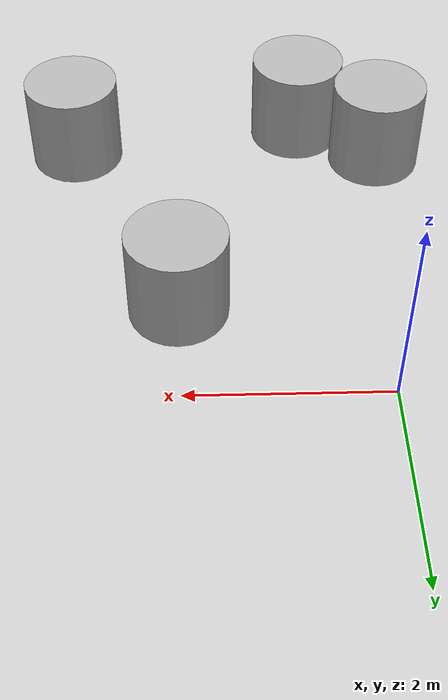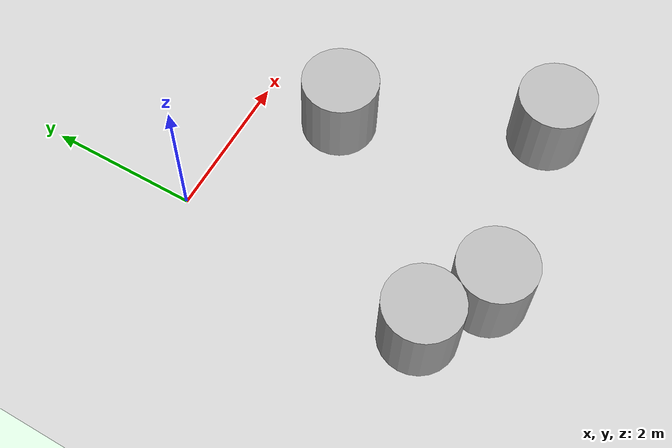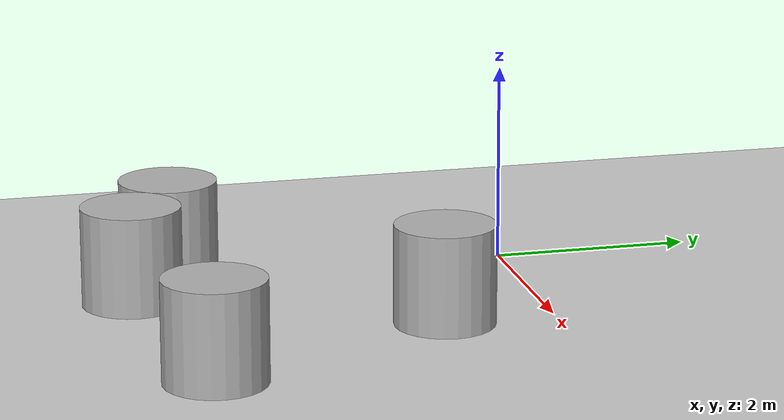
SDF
<?xml version='1.0' encoding='utf-8'?>
<sdf version='1.10'>
  <world name='default'>
    <physics type='ode'>
      <max_step_size>0.0040000000000000001</max_step_size>
      <real_time_factor>1</real_time_factor>
      <real_time_update_rate>250</real_time_update_rate>
    </physics>
    <plugin name='gz::sim::systems::Physics' filename='gz-sim-physics-system'/>
    <plugin name='gz::sim::systems::UserCommands' filename='gz-sim-user-commands-system'/>
    <plugin name='gz::sim::systems::SceneBroadcaster' filename='gz-sim-scene-broadcaster-system'/>
    <plugin name='gz::sim::systems::Contact' filename='gz-sim-contact-system'/>
    <plugin name='gz::sim::systems::Imu' filename='gz-sim-imu-system'/>
    <plugin name='gz::sim::systems::AirPressure' filename='gz-sim-air-pressure-system'/>
    <plugin name='gz::sim::systems::Sensors' filename='gz-sim-sensors-system'>
      <render_engine>ogre2</render_engine>
    </plugin>
    <gui fullscreen='false'>
      <plugin name='3D View' filename='GzScene3D'>
        <gz-gui>
          <title>3D View</title>
          <property type='bool' key='showTitleBar'>0</property>
          <property type='string' key='state'>docked</property>
        </gz-gui>
        <engine>ogre2</engine>
        <scene>scene</scene>
        <ambient_light>0.5984631152222222 0.5984631152222222 0.5984631152222222</ambient_light>
        <background_color>0.8984631152222222 0.8984631152222222 0.8984631152222222</background_color>
        <camera_pose>-6 0 6 0 0.5 0</camera_pose>
      </plugin>
      <plugin name='World control' filename='WorldControl'>
        <gz-gui>
          <title>World control</title>
          <property type='bool' key='showTitleBar'>0</property>
          <property type='bool' key='resizable'>0</property>
          <property type='double' key='height'>72</property>
          <property type='double' key='width'>121</property>
          <property type='double' key='z'>1</property>
          <property type='string' key='state'>floating</property>
          <anchors target='3D View'>
            <line own='left' target='left'/>
            <line own='bottom' target='bottom'/>
          </anchors>
        </gz-gui>
        <play_pause>1</play_pause>
        <step>1</step>
        <start_paused>1</start_paused>
      </plugin>
      <plugin name='World stats' filename='WorldStats'>
        <gz-gui>
          <title>World stats</title>
          <property type='bool' key='showTitleBar'>0</property>
          <property type='bool' key='resizable'>0</property>
          <property type='double' key='height'>110</property>
          <property type='double' key='width'>290</property>
          <property type='double' key='z'>1</property>
          <property type='string' key='state'>floating</property>
          <anchors target='3D View'>
            <line own='right' target='right'/>
            <line own='bottom' target='bottom'/>
          </anchors>
        </gz-gui>
        <sim_time>1</sim_time>
        <real_time>1</real_time>
        <real_time_factor>1</real_time_factor>
        <iterations>1</iterations>
      </plugin>
      <plugin name='Entity tree' filename='EntityTree'/>
    </gui>
    <gravity>0 0 -9.8</gravity>
    <magnetic_field>6e-06 2.3e-05 -4.2e-05</magnetic_field>
    <atmosphere type='adiabatic'/>
    <scene>
      <grid>false</grid>
      <ambient>0.4 0.4 0.4 1</ambient>
      <background>0.7 0.7 0.7 1</background>
      <shadows>true</shadows>
    </scene>
    <model name='ground_plane'>
      <static>true</static>
      <link name='link'>
        <collision name='collision'>
          <geometry>
            <plane>
              <normal>0 0 1</normal>
              <size>1 1</size>
            </plane>
          </geometry>
          <surface>
            <friction>
              <ode/>
            </friction>
            <bounce/>
            <contact/>
          </surface>
        </collision>
        <visual name='visual'>
          <geometry>
            <plane>
              <normal>0 0 1</normal>
              <size>100 100</size>
            </plane>
          </geometry>
          <material>
            <ambient>0.8 0.8 0.8 1</ambient>
            <diffuse>0.8 0.8 0.8 1</diffuse>
            <specular>0.8 0.8 0.8 1</specular>
          </material>
        </visual>
        <pose>0 0 0 0 -0 0</pose>
        <inertial>
          <pose>0 0 0 0 -0 0</pose>
          <mass>1</mass>
          <inertia>
            <ixx>1</ixx>
            <ixy>0</ixy>
            <ixz>0</ixz>
            <iyy>1</iyy>
            <iyz>0</iyz>
            <izz>1</izz>
          </inertia>
        </inertial>
        <enable_wind>false</enable_wind>
      </link>
      <pose>0 0 0 0 -0 0</pose>
      <self_collide>false</self_collide>
    </model>
        <model name='cylinder'>
      <pose>-0.16528587826831759 -3.4235164938683345 0.50000000104354192 -5.5099679327457442e-07 -8.6371922916007458e-07 0.00060401790781018216</pose>
      <link name='cylinder_link'>
        <inertial>
          <inertia>
            <ixx>0.14580000000000001</ixx>
            <ixy>0</ixy>
            <ixz>0</ixz>
            <iyy>0.14580000000000001</iyy>
            <iyz>0</iyz>
            <izz>0.125</izz>
          </inertia>
          <mass>1</mass>
          <pose>0 0 0 0 0 0</pose>
        </inertial>
        <collision name='cylinder_collision'>
          <geometry>
            <cylinder>
              <radius>0.5</radius>
              <length>1</length>
            </cylinder>
          </geometry>
          <surface>
            <friction>
              <ode/>
            </friction>
            <bounce/>
            <contact/>
          </surface>
        </collision>
        <visual name='cylinder_visual'>
          <geometry>
            <cylinder>
              <radius>0.5</radius>
              <length>1</length>
            </cylinder>
          </geometry>
          <material>
            <ambient>0.300000012 0.300000012 0.300000012 1</ambient>
            <diffuse>0.699999988 0.699999988 0.699999988 1</diffuse>
            <specular>1 1 1 1</specular>
          </material>
        </visual>
        <pose>0 0 0 0 0 0</pose>
        <enable_wind>false</enable_wind>
      </link>
      <static>false</static>
      <self_collide>false</self_collide>
    </model>
    <model name='cylinder_0'>
      <pose>0.69231809071840178 -3.9378300057288924 0.50000010096069247 7.5708524814152362e-07 1.7324700130024698e-06 0.00061785810242558905</pose>
      <link name='cylinder_link'>
        <inertial>
          <inertia>
            <ixx>0.14580000000000001</ixx>
            <ixy>0</ixy>
            <ixz>0</ixz>
            <iyy>0.14580000000000001</iyy>
            <iyz>0</iyz>
            <izz>0.125</izz>
          </inertia>
          <mass>1</mass>
          <pose>0 0 0 0 0 0</pose>
        </inertial>
        <collision name='cylinder_collision'>
          <geometry>
            <cylinder>
              <radius>0.5</radius>
              <length>1</length>
            </cylinder>
          </geometry>
          <surface>
            <friction>
              <ode/>
            </friction>
            <bounce/>
            <contact/>
          </surface>
        </collision>
        <visual name='cylinder_visual'>
          <geometry>
            <cylinder>
              <radius>0.5</radius>
              <length>1</length>
            </cylinder>
          </geometry>
          <material>
            <ambient>0.300000012 0.300000012 0.300000012 1</ambient>
            <diffuse>0.699999988 0.699999988 0.699999988 1</diffuse>
            <specular>1 1 1 1</specular>
          </material>
        </visual>
        <pose>0 0 0 0 0 0</pose>
        <enable_wind>false</enable_wind>
      </link>
      <static>false</static>
      <self_collide>false</self_collide>
    </model>
    <model name='cylinder_1'>
      <pose>3.1948094281137553 -3.5737537118807907 0.4999991715375221 5.1783575523272131e-18 -6.7018816601991112e-18 5.5310449608046071e-20</pose>
      <link name='cylinder_link'>
        <inertial>
          <inertia>
            <ixx>0.14580000000000001</ixx>
            <ixy>0</ixy>
            <ixz>0</ixz>
            <iyy>0.14580000000000001</iyy>
            <iyz>0</iyz>
            <izz>0.125</izz>
          </inertia>
          <mass>1</mass>
          <pose>0 0 0 0 0 0</pose>
        </inertial>
        <collision name='cylinder_collision'>
          <geometry>
            <cylinder>
              <radius>0.5</radius>
              <length>1</length>
            </cylinder>
          </geometry>
          <surface>
            <friction>
              <ode/>
            </friction>
            <bounce/>
            <contact/>
          </surface>
        </collision>
        <visual name='cylinder_visual'>
          <geometry>
            <cylinder>
              <radius>0.5</radius>
              <length>1</length>
            </cylinder>
          </geometry>
          <material>
            <ambient>0.300000012 0.300000012 0.300000012 1</ambient>
            <diffuse>0.699999988 0.699999988 0.699999988 1</diffuse>
            <specular>1 1 1 1</specular>
          </material>
        </visual>
        <pose>0 0 0 0 0 0</pose>
        <enable_wind>false</enable_wind>
      </link>
      <static>false</static>
      <self_collide>false</self_collide>
    </model>
    <model name='cylinder_2'>
      <pose>2.0275257890111131 -1.1029058640956879 0.4999991715375221 -4.2454641062541591e-19 -1.5680320736805051e-18 -3.1685117920034743e-20</pose>
      <link name='cylinder_link'>
        <inertial>
          <inertia>
            <ixx>0.14580000000000001</ixx>
            <ixy>0</ixy>
            <ixz>0</ixz>
            <iyy>0.14580000000000001</iyy>
            <iyz>0</iyz>
            <izz>0.125</izz>
          </inertia>
          <mass>1</mass>
          <pose>0 0 0 0 0 0</pose>
        </inertial>
        <collision name='cylinder_collision'>
          <geometry>
            <cylinder>
              <radius>0.5</radius>
              <length>1</length>
            </cylinder>
          </geometry>
          <surface>
            <friction>
              <ode/>
            </friction>
            <bounce/>
            <contact/>
          </surface>
        </collision>
        <visual name='cylinder_visual'>
          <geometry>
            <cylinder>
              <radius>0.5</radius>
              <length>1</length>
            </cylinder>
          </geometry>
          <material>
            <ambient>0.300000012 0.300000012 0.300000012 1</ambient>
            <diffuse>0.699999988 0.699999988 0.699999988 1</diffuse>
            <specular>1 1 1 1</specular>
          </material>
        </visual>
        <pose>0 0 0 0 0 0</pose>
        <enable_wind>false</enable_wind>
      </link>
      <static>false</static>
      <self_collide>false</self_collide>
    </model>
    <light name='sunUTC' type='directional'>
      <pose>0 0 500 0 -0 0</pose>
      <cast_shadows>true</cast_shadows>
      <intensity>1</intensity>
      <direction>0.001 0.625 -0.78</direction>
      <diffuse>0.904 0.904 0.904 1</diffuse>
      <specular>0.271 0.271 0.271 1</specular>
      <attenuation>
        <range>2000</range>
        <linear>0</linear>
        <constant>1</constant>
        <quadratic>0</quadratic>
      </attenuation>
      <spot>
        <inner_angle>0</inner_angle>
        <outer_angle>0</outer_angle>
        <falloff>0</falloff>
      </spot>
    </light>
  </world>
</sdf>
